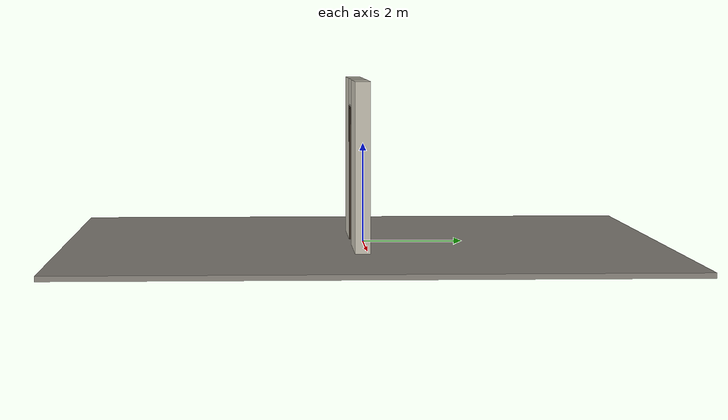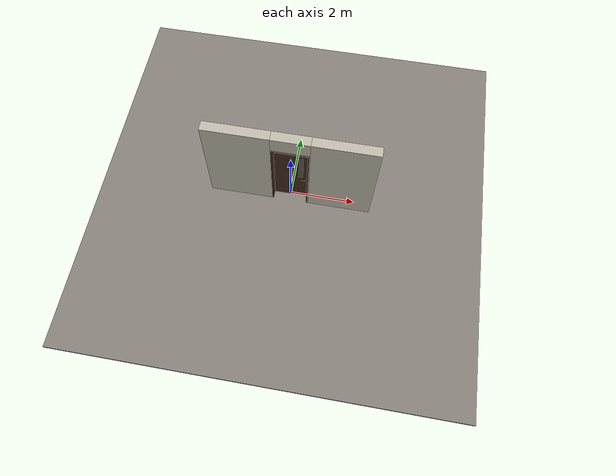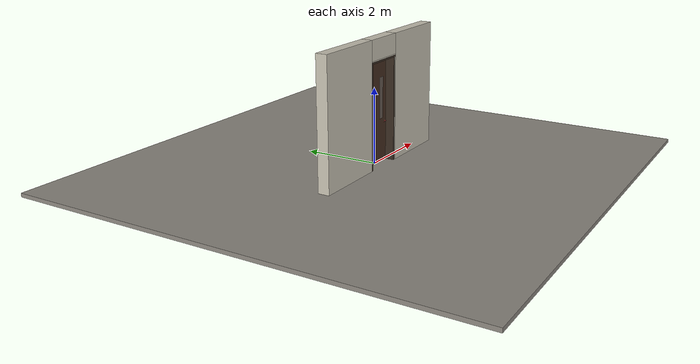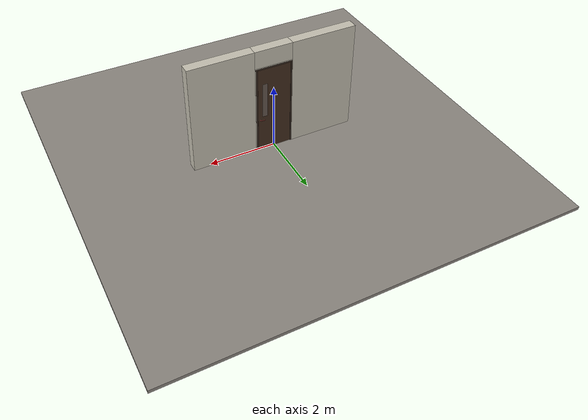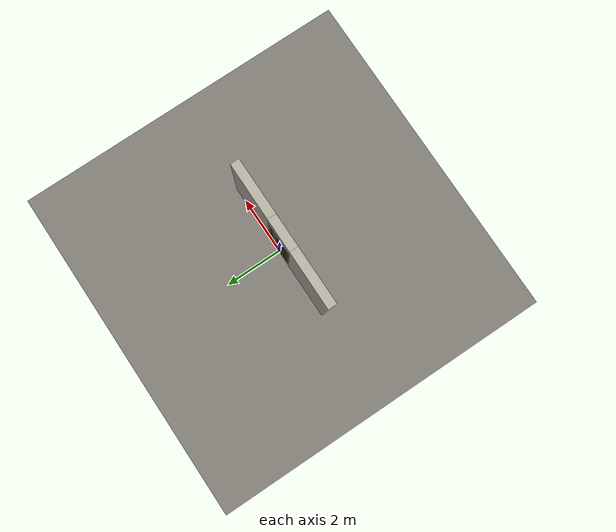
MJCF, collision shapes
<?xml version="1.0" ?>
<mujoco model="db0671_pivot_minimal">
  <compiler angle="radian" meshdir="../../hardware" texturedir="../../textures" autolimits="true" inertiafromgeom="false"/>
  <option timestep="0.002" integrator="implicitfast" cone="elliptic" impratio="10" noslip_iterations="3">
    <flag multiccd="enable"/>
  </option>
  <size memory="16M"/>
  <default>
    <geom condim="4" solref="0.005 1" solimp="0.95 0.99 0.001"/>
    <joint solreflimit="0.005 1" solimplimit="0.95 0.99 0.001"/>
    <tendon solreflimit="0.005 1"/>
    <equality solref="0.002 1"/>
  </default>
  <visual>
    <headlight ambient="0.4 0.4 0.4" diffuse="0.7 0.7 0.7" specular="0.2 0.2 0.2"/>
    <quality shadowsize="4096"/>
    <map znear="0.01" zfar="60"/>
  </visual>
  <asset>
    <mesh name="lever_57205841c3" file="lever_57205841c3.obj"/>
    <material name="mat_floor" rgba="0.55 0.53 0.5 1" specular="0.2" shininess="0.15" reflectance="0"/>
    <material name="mat_wall" rgba="0.78 0.76 0.7 1" specular="0.2" shininess="0.1" reflectance="0"/>
    <material name="mat_leaf" rgba="0.263 0.174 0.118 1" specular="0.2" shininess="0.55" reflectance="0"/>
    <material name="mat_glass" rgba="0.85 0.92 0.95 0.25" specular="0.2" shininess="0.95" reflectance="0.1"/>
    <material name="mat_hinge" rgba="0.65 0.66 0.68 1" specular="0.74" shininess="0.5" reflectance="0.36"/>
    <material name="mat_op_black_matte_metal" rgba="0.05 0.05 0.05 1" specular="0.38" shininess="0.3" reflectance="0.12"/>
    <material name="mat_trim" rgba="0.85 0.66 0.3 1" specular="0.8" shininess="0.75" reflectance="0.4"/>
    <material name="mat_frame" rgba="0.22 0.17 0.13 1" specular="0.8" shininess="0.6" reflectance="0.4"/>
    <material name="mat_closer" rgba="0.75 0.76 0.77 1" specular="0.8" shininess="0.65" reflectance="0.4"/>
    <texture name="skybox" type="skybox" builtin="gradient" rgb1="0.6 0.7 0.85" rgb2="0.9 0.92 0.95" width="256" height="256"/>
  </asset>
  <worldbody>
    <light name="sun" pos="1.5 -2.5 4" dir="-0.3 0.5 -0.8" directional="true" diffuse="0.8 0.8 0.8" specular="0.3 0.3 0.3" castshadow="true"/>
    <light name="fill" pos="-1.5 2.5 3" dir="0.3 -0.5 -0.7" directional="true" diffuse="0.35 0.35 0.4" castshadow="false"/>
    <camera name="robot_view" pos="0 -3.2805 2.2429" xyaxes="1 0 0 0 0.26963 0.962964" fovy="52"/>
    <camera name="far_view" pos="0 3.0545 2.2429" xyaxes="-1 0 0 0 -0.26963 0.962964" fovy="52"/>
    <camera name="iso" pos="2.4073 -2.7737 2.7497" xyaxes="0.741536 0.670913 0 -0.242917 0.268487 0.932151" fovy="46"/>
    <camera name="detail_handle" pos="0.519 -0.885 1.33" xyaxes="0.97561 0.219512 0 -0.070934 0.315262 0.94635" fovy="38"/>
    <geom name="floor" type="box" size="6 6 0.05" pos="0 0 -0.05" material="mat_floor" group="0" contype="1" conaffinity="1" friction="0.8 0.005 0.0001" density="2400"/>
    <geom name="wall_left" type="box" size="0.9745 0.15 1.656" pos="-1.5255 -0.113 1.656" material="mat_wall" group="0" contype="1" conaffinity="1" friction="0.6 0.005 0.0001" density="800"/>
    <geom name="wall_right" type="box" size="0.9595 0.15 1.656" pos="1.5405 -0.113 1.656" material="mat_wall" group="0" contype="1" conaffinity="1" friction="0.6 0.005 0.0001" density="800"/>
    <geom name="wall_header" type="box" size="0.566 0.15 0.2625" pos="0.015 -0.113 3.0495" material="mat_wall" group="0" contype="1" conaffinity="1" friction="0.6 0.005 0.0001" density="800"/>
    <geom name="jamb_hinge" type="box" size="0.0225 0.15 1.356" pos="-0.5285 -0.113 1.356" material="mat_frame" group="0" contype="1" conaffinity="1" friction="0.6 0.005 0.0001" density="300"/>
    <geom name="jamb_strike" type="box" size="0.0225 0.15 1.356" pos="0.5285 -0.113 1.356" material="mat_frame" group="0" contype="1" conaffinity="1" friction="0.6 0.005 0.0001" density="300"/>
    <geom name="stud_strike" type="box" size="0.015 0.15 1.356" pos="0.566 -0.113 1.356" material="mat_wall" group="0" contype="1" conaffinity="1" friction="0.6 0.005 0.0001" density="500"/>
    <geom name="jamb_head" type="box" size="0.566 0.15 0.0225" pos="0.015 -0.113 2.7345" material="mat_frame" group="0" contype="1" conaffinity="1" friction="0.6 0.005 0.0001" density="300"/>
    <geom name="head_stud" type="box" size="0.566 0.15 0.015" pos="0.015 -0.113 2.772" material="mat_wall" group="0" contype="1" conaffinity="1" friction="0.6 0.005 0.0001" density="500"/>
    <site name="approach_point" pos="0 -1.5 0" quat="1 0 0 0" size="0.05" rgba="0.2 0.9 0.2 0.5" group="4"/>
    <site name="goal_point" pos="0 1.5 0" quat="1 0 0 0" size="0.05" rgba="0.2 0.9 0.2 0.5" group="4"/>
    <site name="door_plane_center" pos="0 0 1.356" quat="1 0 0 0" size="0.02" rgba="0.2 0.9 0.2 0.5" group="4"/>
    <body name="leaf" pos="-0.506 0 0">
      <inertial pos="0.506031 0 1.358035" mass="98.410151" quat="0.500005 -0.500005 -0.499995 -0.499995" diaginertia="8.230366562 59.809405208 67.980725336"/>
      <joint name="leaf_hinge" type="hinge" axis="0 0 1" pos="0.25 0 0" limited="true" range="0 2.443461" damping="8.48762" frictionloss="1.602407" stiffness="15.940959" springref="-2.85491" armature="0.02"/>
      <geom name="leaf_slab" type="box" size="0.5 0.03 1.35" pos="0.506 0 1.358" material="mat_leaf" group="0" contype="1" conaffinity="1" friction="0.35 0.005 0.0001" density="1"/>
      <geom name="leaf_glass_0" type="box" size="0.075 0.0308 0.54" pos="0.791 0 1.682" material="mat_glass" group="1" contype="0" conaffinity="0" density="1"/>
      <site name="leaf_edge_mid" pos="1.006 0 1.35" quat="1 0 0 0" size="0.02" rgba="0.2 0.9 0.2 0.5" group="4"/>
      <body name="leaf_handle" pos="0.941 0 1.05">
        <inertial pos="-0.019728 0 0" mass="0.753175" quat="0 0.707107 0.707107 0" diaginertia="0.000986163 0.003275588 0.004158102"/>
        <joint name="leaf_handle_hinge" type="hinge" axis="0 -1 0" limited="true" range="0 0.87" damping="0.21242" frictionloss="0.042" stiffness="1" springref="-0.35" armature="0.01"/>
        <geom name="leaf_handle_lever_n" type="mesh" mesh="lever_57205841c3" pos="0 -0.03 0" quat="0.707107 0.707107 0 0" material="mat_op_black_matte_metal" group="1" contype="0" conaffinity="0" density="3000"/>
        <geom name="leaf_handle_lever_col_n" type="capsule" size="0.007 0.053" pos="-0.06 -0.085 0" quat="0.707107 0 -0.707107 0" material="mat_op_black_matte_metal" group="3" contype="1" conaffinity="1" rgba="0.8 0.3 0.3 0.25" friction="0.7 0.01 0.0001" density="3000"/>
        <geom name="leaf_handle_hub_col_n" type="cylinder" size="0.012 0.022" pos="0 -0.06 0" quat="0.707107 -0.707107 0 0" material="mat_op_black_matte_metal" group="3" contype="1" conaffinity="1" rgba="0.8 0.3 0.3 0.25" friction="0.6 0.005 0.0001" density="3000"/>
        <geom name="leaf_handle_lever_p" type="mesh" mesh="lever_57205841c3" pos="0 0.03 0" quat="-0.707107 0.707107 0 0" material="mat_op_black_matte_metal" group="1" contype="0" conaffinity="0" density="3000"/>
        <geom name="leaf_handle_lever_col_p" type="capsule" size="0.007 0.053" pos="-0.06 0.085 0" quat="0.707107 0 -0.707107 0" material="mat_op_black_matte_metal" group="3" contype="1" conaffinity="1" rgba="0.8 0.3 0.3 0.25" friction="0.7 0.01 0.0001" density="3000"/>
        <geom name="leaf_handle_hub_col_p" type="cylinder" size="0.012 0.022" pos="0 0.06 0" quat="0.707107 -0.707107 0 0" material="mat_op_black_matte_metal" group="3" contype="1" conaffinity="1" rgba="0.8 0.3 0.3 0.25" friction="0.6 0.005 0.0001" density="3000"/>
        <site name="leaf_handle_grip_n" pos="-0.096 -0.085 0" quat="1 0 0 0" size="0.012" rgba="0.2 0.9 0.2 0.5" group="4"/>
        <site name="leaf_handle_grip_p" pos="-0.096 0.085 0" quat="1 0 0 0" size="0.012" rgba="0.2 0.9 0.2 0.5" group="4"/>
      </body>
    </body>
  </worldbody>
  <sensor>
    <jointpos name="leaf_hinge_pos" joint="leaf_hinge"/>
    <jointvel name="leaf_hinge_vel" joint="leaf_hinge"/>
    <jointpos name="leaf_handle_hinge_pos" joint="leaf_handle_hinge"/>
    <jointvel name="leaf_handle_hinge_vel" joint="leaf_handle_hinge"/>
  </sensor>
</mujoco>
